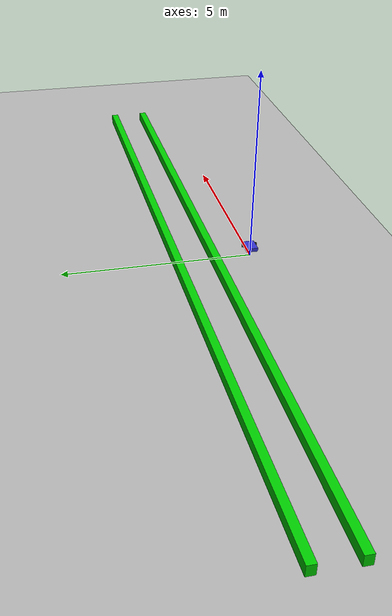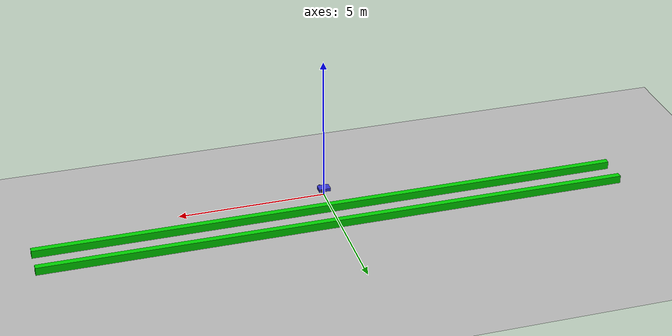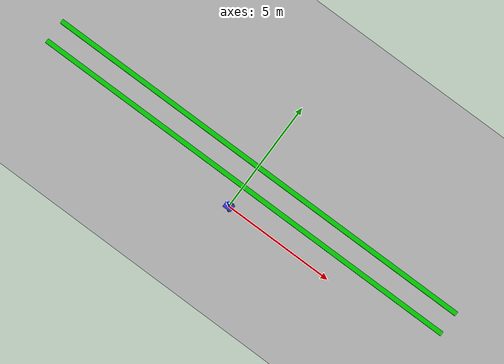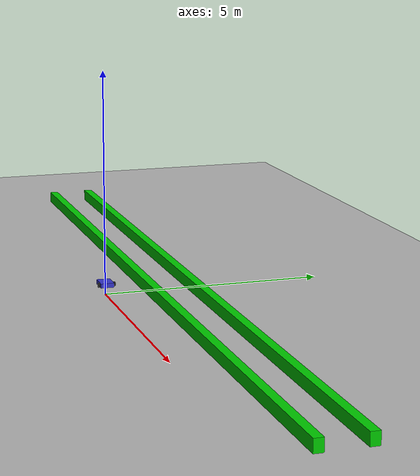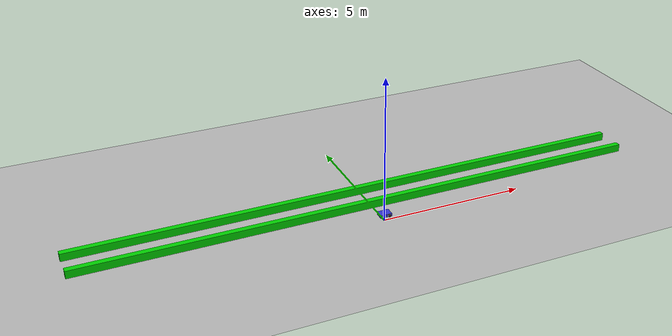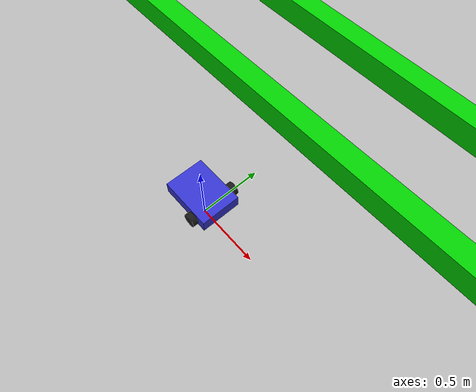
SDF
<?xml version="1.0" ?>
<sdf version="1.9">
  <world name="farm_world">
    <!-- Ground plane -->
    <model name="ground_plane">
      <static>true</static>
      <link name="link">
        <collision name="collision">
          <geometry>
            <plane>
              <normal>0 0 1</normal>
              <size>100 100</size>
            </plane>
          </geometry>
        </collision>
        <visual name="visual">
          <geometry>
            <plane>
              <normal>0 0 1</normal>
              <size>100 100</size>
            </plane>
          </geometry>
          <material>
            <diffuse>0.7 0.7 0.7 1</diffuse>
          </material>
        </visual>
      </link>
    </model>

    <!-- Crop rows (boxes to simulate crops) -->
    <model name="crop_row_1">
      <pose>0 1 0 0 0 0</pose>
      <static>true</static>
      <link name="link">
        <visual name="visual">
          <geometry>
            <box>
              <size>20 0.2 0.5</size>
            </box>
          </geometry>
          <material>
            <diffuse>0 0.8 0 1</diffuse>
          </material>
        </visual>
        <collision name="collision">
          <geometry>
            <box>
              <size>20 0.2 0.5</size>
            </box>
          </geometry>
        </collision>
      </link>
    </model>

    <model name="crop_row_2">
      <pose>0 2 0 0 0 0</pose>
      <static>true</static>
      <link name="link">
        <visual name="visual">
          <geometry>
            <box>
              <size>20 0.2 0.5</size>
            </box>
          </geometry>
          <material>
            <diffuse>0 0.8 0 1</diffuse>
          </material>
        </visual>
        <collision name="collision">
          <geometry>
            <box>
              <size>20 0.2 0.5</size>
            </box>
          </geometry>
        </collision>
      </link>
    </model>

    <!-- Lighting -->
    <light type="directional" name="sun">
      <pose>0 0 10 0 0 0</pose>
      <diffuse>0.8 0.8 0.8 1</diffuse>
      <specular>0.2 0.2 0.2 1</specular>
      <direction>-0.5 0.1 -0.9</direction>
    </light>

    <!-- Include the robot -->
    <include>
      <uri>model://diff_drive_robot</uri>
      <pose>0 0 0.2 0 0 0</pose>
    </include>
  </world>
</sdf>

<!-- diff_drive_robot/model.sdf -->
<sdf version="1.6">
  <model name="diff_drive_robot">
    <!-- 로봇 본체 -->
    <link name="chassis">
      <pose>0 0 0.05 0 0 0</pose>
      <inertial>
        <mass>5.0</mass>
        <inertia>
          <ixx>0.0417</ixx>
          <iyy>0.0417</iyy>
          <izz>0.0833</izz>
          <ixy>0</ixy>
          <ixz>0</ixz>
          <iyz>0</iyz>
        </inertia>
      </inertial>
      <collision name="collision">
        <geometry>
          <box>
            <size>0.4 0.3 0.1</size>
          </box>
        </geometry>
      </collision>
      <visual name="visual">
        <geometry>
          <box>
            <size>0.4 0.3 0.1</size>
          </box>
        </geometry>
        <material>
          <ambient>0.2 0.2 0.8 1</ambient>
          <diffuse>0.2 0.2 0.8 1</diffuse>
          <specular>0.1 0.1 0.1 1</specular>
        </material>
      </visual>
    </link>

    <!-- 좌측 바퀴 -->
    <link name="left_wheel">
      <pose>0.1 0.175 0.05 -1.5707 0 0</pose>
      <inertial>
        <mass>1.0</mass>
        <inertia>
          <ixx>0.0029</ixx>
          <iyy>0.0029</iyy>
          <izz>0.0052</izz>
          <ixy>0</ixy>
          <ixz>0</ixz>
          <iyz>0</iyz>
        </inertia>
      </inertial>
      <collision name="collision">
        <geometry>
          <cylinder>
            <radius>0.05</radius>
            <length>0.04</length>
          </cylinder>
        </geometry>
      </collision>
      <visual name="visual">
        <geometry>
          <cylinder>
            <radius>0.05</radius>
            <length>0.04</length>
          </cylinder>
        </geometry>
        <material>
          <ambient>0.1 0.1 0.1 1</ambient>
          <diffuse>0.1 0.1 0.1 1</diffuse>
          <specular>0.1 0.1 0.1 1</specular>
        </material>
      </visual>
    </link>

    <!-- 우측 바퀴 -->
    <link name="right_wheel">
      <pose>0.1 -0.175 0.05 -1.5707 0 0</pose>
      <inertial>
        <mass>1.0</mass>
        <inertia>
          <ixx>0.0029</ixx>
          <iyy>0.0029</iyy>
          <izz>0.0052</izz>
          <ixy>0</ixy>
          <ixz>0</ixz>
          <iyz>0</iyz>
        </inertia>
      </inertial>
      <collision name="collision">
        <geometry>
          <cylinder>
            <radius>0.05</radius>
            <length>0.04</length>
          </cylinder>
        </geometry>
      </collision>
      <visual name="visual">
        <geometry>
          <cylinder>
            <radius>0.05</radius>
            <length>0.04</length>
          </cylinder>
        </geometry>
        <material>
          <ambient>0.1 0.1 0.1 1</ambient>
          <diffuse>0.1 0.1 0.1 1</diffuse>
          <specular>0.1 0.1 0.1 1</specular>
        </material>
      </visual>
    </link>

    <!-- 캐스터 휠 -->
    <link name="caster">
      <pose>-0.15 0 0.025 0 0 0</pose>
      <inertial>
        <mass>0.5</mass>
        <inertia>
          <ixx>0.0001</ixx>
          <iyy>0.0001</iyy>
          <izz>0.0001</izz>
          <ixy>0</ixy>
          <ixz>0</ixz>
          <iyz>0</iyz>
        </inertia>
      </inertial>
      <collision name="collision">
        <geometry>
          <sphere>
            <radius>0.025</radius>
          </sphere>
        </geometry>
        <surface>
          <friction>
            <ode>
              <mu>0.1</mu>
              <mu2>0.1</mu2>
            </ode>
          </friction>
        </surface>
      </collision>
      <visual name="visual">
        <geometry>
          <sphere>
            <radius>0.025</radius>
          </sphere>
        </geometry>
        <material>
          <ambient>0.3 0.3 0.3 1</ambient>
          <diffuse>0.3 0.3 0.3 1</diffuse>
          <specular>0.1 0.1 0.1 1</specular>
        </material>
      </visual>
    </link>

    <!-- 좌측 바퀴 조인트 -->
    <joint name="left_wheel_joint" type="revolute">
      <parent>chassis</parent>
      <child>left_wheel</child>
      <axis>
        <xyz>0 0 1</xyz>
        <limit>
          <lower>-1e+16</lower>
          <upper>1e+16</upper>
        </limit>
      </axis>
    </joint>

    <!-- 우측 바퀴 조인트 -->
    <joint name="right_wheel_joint" type="revolute">
      <parent>chassis</parent>
      <child>right_wheel</child>
      <axis>
        <xyz>0 0 1</xyz>
        <limit>
          <lower>-1e+16</lower>
          <upper>1e+16</upper>
        </limit>
      </axis>
    </joint>

    <!-- 캐스터 볼 조인트 -->
    <joint name="caster_joint" type="ball">
      <parent>chassis</parent>
      <child>caster</child>
    </joint>

    <!-- 차동 구동 플러그인 -->
    <plugin
      filename="ignition-gazebo-diff-drive-system"
      name="ignition::gazebo::systems::DiffDrive">
      <left_joint>left_wheel_joint</left_joint>
      <right_joint>right_wheel_joint</right_joint>
      <wheel_separation>0.35</wheel_separation>
      <wheel_radius>0.05</wheel_radius>
      <odom_publish_frequency>10</odom_publish_frequency>
      <topic>cmd_vel</topic>
    </plugin>
  </model>
</sdf>
